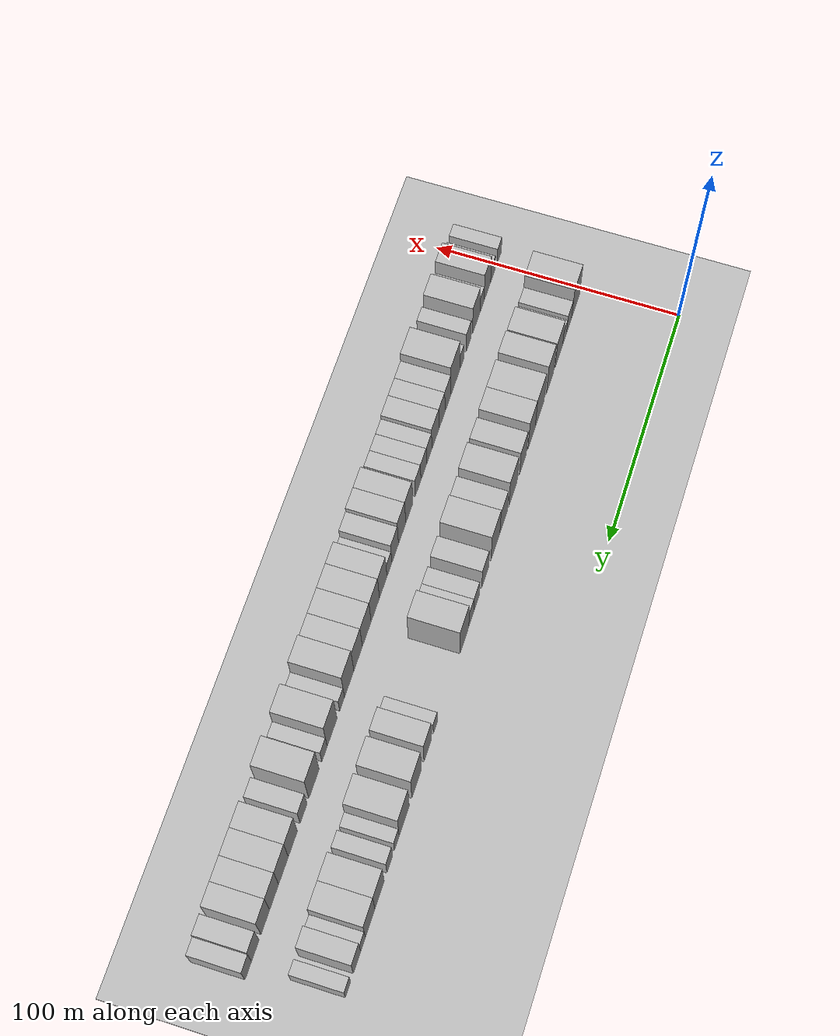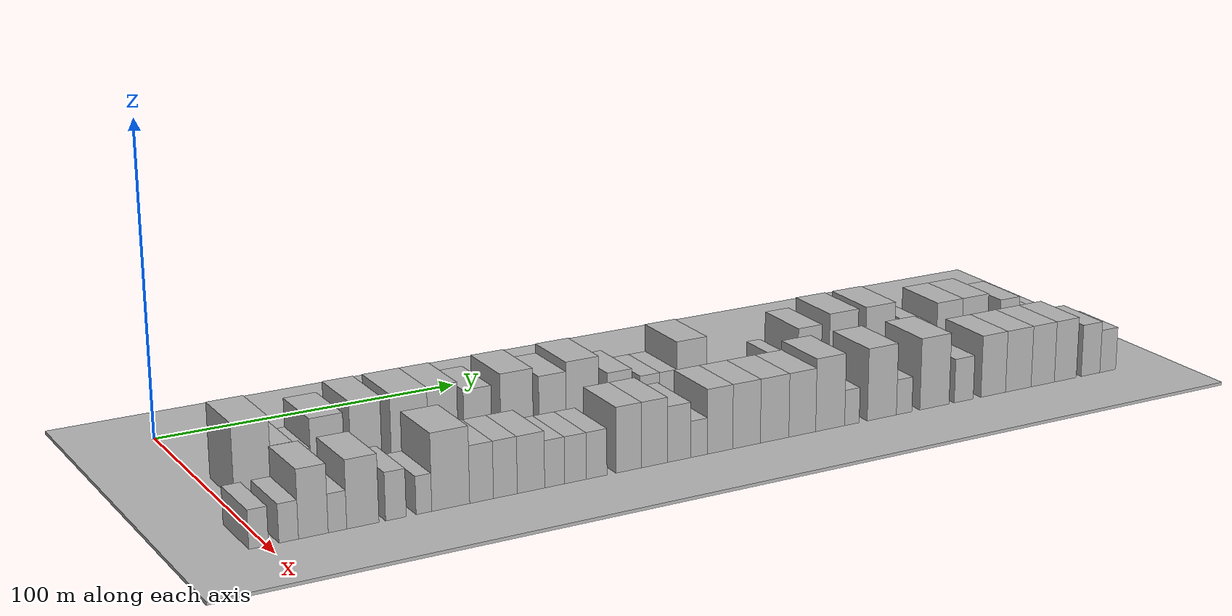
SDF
<sdf version="1.6">
 <world name="default">
  <include><name>ground_plane_1</name><uri>model://HANNAS_ground_plane</uri></include>
  <include>
   <name>ground_plane_2</name>
   <uri>model://HANNAS_ground_plane</uri>
   <pose>100 0 0  0 0 0</pose>
  </include>
  <model name="building_33">
   <static>1</static>
   <pose>50.0000 8.9000 0 0.000000 0.000000 0.000000</pose>
   <link name="link">
    <pose>0 0 12.00 0 0 0</pose>
    <collision name="collision"><geometry><box><size>20.0000 11.3878 24.0000</size></box></geometry></collision>
    <visual name="visual">
     <cast_shadows>0</cast_shadows>
     <geometry><box><size>20.0000 11.3878 24.0000</size></box></geometry>
     <material>
      <script>
       <uri>model://HANNAS_wall/materials/scripts</uri>
       <uri>model://HANNAS_wall/materials/textures</uri>
       <name>vrc/HANNAS_wall</name>
      </script>
     </material>
    </visual>
   </link>
  </model>
  <model name="building_34">
   <static>1</static>
   <pose>50.0000 18.0615 0 0.000000 0.000000 0.000000</pose>
   <link name="link">
    <pose>0 0 7.50 0 0 0</pose>
    <collision name="collision"><geometry><box><size>20.0000 6.9351 15.0000</size></box></geometry></collision>
    <visual name="visual">
     <cast_shadows>0</cast_shadows>
     <geometry><box><size>20.0000 6.9351 15.0000</size></box></geometry>
     <material>
      <script>
       <uri>model://HANNAS_wall/materials/scripts</uri>
       <uri>model://HANNAS_wall/materials/textures</uri>
       <name>vrc/HANNAS_wall</name>
      </script>
     </material>
    </visual>
   </link>
  </model>
  <model name="building_35">
   <static>1</static>
   <pose>50.0000 24.1710 0 0.000000 0.000000 0.000000</pose>
   <link name="link">
    <pose>0 0 6.00 0 0 0</pose>
    <collision name="collision"><geometry><box><size>20.0000 5.2841 12.0000</size></box></geometry></collision>
    <visual name="visual">
     <cast_shadows>0</cast_shadows>
     <geometry><box><size>20.0000 5.2841 12.0000</size></box></geometry>
     <material>
      <script>
       <uri>model://HANNAS_wall/materials/scripts</uri>
       <uri>model://HANNAS_wall/materials/textures</uri>
       <name>vrc/HANNAS_wall</name>
      </script>
     </material>
    </visual>
   </link>
  </model>
  <model name="building_36">
   <static>1</static>
   <pose>50.0000 32.0072 0 0.000000 0.000000 0.000000</pose>
   <link name="link">
    <pose>0 0 10.50 0 0 0</pose>
    <collision name="collision"><geometry><box><size>20.0000 10.3882 21.0000</size></box></geometry></collision>
    <visual name="visual">
     <cast_shadows>0</cast_shadows>
     <geometry><box><size>20.0000 10.3882 21.0000</size></box></geometry>
     <material>
      <script>
       <uri>model://HANNAS_wall/materials/scripts</uri>
       <uri>model://HANNAS_wall/materials/textures</uri>
       <name>vrc/HANNAS_wall</name>
      </script>
     </material>
    </visual>
   </link>
  </model>
  <model name="building_37">
   <static>1</static>
   <pose>50.0000 44.0992 0 0.000000 0.000000 0.000000</pose>
   <link name="link">
    <pose>0 0 12.00 0 0 0</pose>
    <collision name="collision"><geometry><box><size>20.0000 9.7959 24.0000</size></box></geometry></collision>
    <visual name="visual">
     <cast_shadows>0</cast_shadows>
     <geometry><box><size>20.0000 9.7959 24.0000</size></box></geometry>
     <material>
      <script>
       <uri>model://HANNAS_wall/materials/scripts</uri>
       <uri>model://HANNAS_wall/materials/textures</uri>
       <name>vrc/HANNAS_wall</name>
      </script>
     </material>
    </visual>
   </link>
  </model>
  <model name="building_38">
   <static>1</static>
   <pose>50.0000 57.9463 0 0.000000 0.000000 0.000000</pose>
   <link name="link">
    <pose>0 0 12.00 0 0 0</pose>
    <collision name="collision"><geometry><box><size>20.0000 11.8983 24.0000</size></box></geometry></collision>
    <visual name="visual">
     <cast_shadows>0</cast_shadows>
     <geometry><box><size>20.0000 11.8983 24.0000</size></box></geometry>
     <material>
      <script>
       <uri>model://HANNAS_wall/materials/scripts</uri>
       <uri>model://HANNAS_wall/materials/textures</uri>
       <name>vrc/HANNAS_wall</name>
      </script>
     </material>
    </visual>
   </link>
  </model>
  <model name="building_39">
   <static>1</static>
   <pose>50.0000 68.7560 0 0.000000 0.000000 0.000000</pose>
   <link name="link">
    <pose>0 0 12.00 0 0 0</pose>
    <collision name="collision"><geometry><box><size>20.0000 9.7211 24.0000</size></box></geometry></collision>
    <visual name="visual">
     <cast_shadows>0</cast_shadows>
     <geometry><box><size>20.0000 9.7211 24.0000</size></box></geometry>
     <material>
      <script>
       <uri>model://HANNAS_wall/materials/scripts</uri>
       <uri>model://HANNAS_wall/materials/textures</uri>
       <name>vrc/HANNAS_wall</name>
      </script>
     </material>
    </visual>
   </link>
  </model>
  <model name="building_40">
   <static>1</static>
   <pose>50.0000 80.1845 0 0.000000 0.000000 0.000000</pose>
   <link name="link">
    <pose>0 0 10.50 0 0 0</pose>
    <collision name="collision"><geometry><box><size>20.0000 9.1358 21.0000</size></box></geometry></collision>
    <visual name="visual">
     <cast_shadows>0</cast_shadows>
     <geometry><box><size>20.0000 9.1358 21.0000</size></box></geometry>
     <material>
      <script>
       <uri>model://HANNAS_wall/materials/scripts</uri>
       <uri>model://HANNAS_wall/materials/textures</uri>
       <name>vrc/HANNAS_wall</name>
      </script>
     </material>
    </visual>
   </link>
  </model>
  <model name="building_41">
   <static>1</static>
   <pose>50.0000 93.1958 0 0.000000 0.000000 0.000000</pose>
   <link name="link">
    <pose>0 0 12.00 0 0 0</pose>
    <collision name="collision"><geometry><box><size>20.0000 10.8868 24.0000</size></box></geometry></collision>
    <visual name="visual">
     <cast_shadows>0</cast_shadows>
     <geometry><box><size>20.0000 10.8868 24.0000</size></box></geometry>
     <material>
      <script>
       <uri>model://HANNAS_wall/materials/scripts</uri>
       <uri>model://HANNAS_wall/materials/textures</uri>
       <name>vrc/HANNAS_wall</name>
      </script>
     </material>
    </visual>
   </link>
  </model>
  <model name="building_42">
   <static>1</static>
   <pose>50.0000 105.2544 0 0.000000 0.000000 0.000000</pose>
   <link name="link">
    <pose>0 0 10.50 0 0 0</pose>
    <collision name="collision"><geometry><box><size>20.0000 9.2304 21.0000</size></box></geometry></collision>
    <visual name="visual">
     <cast_shadows>0</cast_shadows>
     <geometry><box><size>20.0000 9.2304 21.0000</size></box></geometry>
     <material>
      <script>
       <uri>model://HANNAS_wall/materials/scripts</uri>
       <uri>model://HANNAS_wall/materials/textures</uri>
       <name>vrc/HANNAS_wall</name>
      </script>
     </material>
    </visual>
   </link>
  </model>
  <model name="building_43">
   <static>1</static>
   <pose>50.0000 115.5424 0 0.000000 0.000000 0.000000</pose>
   <link name="link">
    <pose>0 0 12.00 0 0 0</pose>
    <collision name="collision"><geometry><box><size>20.0000 11.3457 24.0000</size></box></geometry></collision>
    <visual name="visual">
     <cast_shadows>0</cast_shadows>
     <geometry><box><size>20.0000 11.3457 24.0000</size></box></geometry>
     <material>
      <script>
       <uri>model://HANNAS_wall/materials/scripts</uri>
       <uri>model://HANNAS_wall/materials/textures</uri>
       <name>vrc/HANNAS_wall</name>
      </script>
     </material>
    </visual>
   </link>
  </model>
  <model name="building_44">
   <static>1</static>
   <pose>50.0000 128.4748 0 0.000000 0.000000 0.000000</pose>
   <link name="link">
    <pose>0 0 9.00 0 0 0</pose>
    <collision name="collision"><geometry><box><size>20.0000 8.5190 18.0000</size></box></geometry></collision>
    <visual name="visual">
     <cast_shadows>0</cast_shadows>
     <geometry><box><size>20.0000 8.5190 18.0000</size></box></geometry>
     <material>
      <script>
       <uri>model://HANNAS_wall/materials/scripts</uri>
       <uri>model://HANNAS_wall/materials/textures</uri>
       <name>vrc/HANNAS_wall</name>
      </script>
     </material>
    </visual>
   </link>
  </model>
  <model name="building_45">
   <static>1</static>
   <pose>50.0000 139.2101 0 0.000000 0.000000 0.000000</pose>
   <link name="link">
    <pose>0 0 7.50 0 0 0</pose>
    <collision name="collision"><geometry><box><size>20.0000 6.9514 15.0000</size></box></geometry></collision>
    <visual name="visual">
     <cast_shadows>0</cast_shadows>
     <geometry><box><size>20.0000 6.9514 15.0000</size></box></geometry>
     <material>
      <script>
       <uri>model://HANNAS_wall/materials/scripts</uri>
       <uri>model://HANNAS_wall/materials/textures</uri>
       <name>vrc/HANNAS_wall</name>
      </script>
     </material>
    </visual>
   </link>
  </model>
  <model name="building_46">
   <static>1</static>
   <pose>50.0000 145.6964 0 0.000000 0.000000 0.000000</pose>
   <link name="link">
    <pose>0 0 7.50 0 0 0</pose>
    <collision name="collision"><geometry><box><size>20.0000 6.0213 15.0000</size></box></geometry></collision>
    <visual name="visual">
     <cast_shadows>0</cast_shadows>
     <geometry><box><size>20.0000 6.0213 15.0000</size></box></geometry>
     <material>
      <script>
       <uri>model://HANNAS_wall/materials/scripts</uri>
       <uri>model://HANNAS_wall/materials/textures</uri>
       <name>vrc/HANNAS_wall</name>
      </script>
     </material>
    </visual>
   </link>
  </model>
  <model name="building_47">
   <static>1</static>
   <pose>50.0000 154.1085 0 0.000000 0.000000 0.000000</pose>
   <link name="link">
    <pose>0 0 12.00 0 0 0</pose>
    <collision name="collision"><geometry><box><size>20.0000 10.8028 24.0000</size></box></geometry></collision>
    <visual name="visual">
     <cast_shadows>0</cast_shadows>
     <geometry><box><size>20.0000 10.8028 24.0000</size></box></geometry>
     <material>
      <script>
       <uri>model://HANNAS_wall/materials/scripts</uri>
       <uri>model://HANNAS_wall/materials/textures</uri>
       <name>vrc/HANNAS_wall</name>
      </script>
     </material>
    </visual>
   </link>
  </model>
  <model name="building_48">
   <static>1</static>
   <pose>50.0000 189.0188 0 0.000000 0.000000 0.000000</pose>
   <link name="link">
    <pose>0 0 6.00 0 0 0</pose>
    <collision name="collision"><geometry><box><size>20.0000 5.0059 12.0000</size></box></geometry></collision>
    <visual name="visual">
     <cast_shadows>0</cast_shadows>
     <geometry><box><size>20.0000 5.0059 12.0000</size></box></geometry>
     <material>
      <script>
       <uri>model://HANNAS_wall/materials/scripts</uri>
       <uri>model://HANNAS_wall/materials/textures</uri>
       <name>vrc/HANNAS_wall</name>
      </script>
     </material>
    </visual>
   </link>
  </model>
  <model name="building_49">
   <static>1</static>
   <pose>50.0000 197.9715 0 0.000000 0.000000 0.000000</pose>
   <link name="link">
    <pose>0 0 10.50 0 0 0</pose>
    <collision name="collision"><geometry><box><size>20.0000 8.8994 21.0000</size></box></geometry></collision>
    <visual name="visual">
     <cast_shadows>0</cast_shadows>
     <geometry><box><size>20.0000 8.8994 21.0000</size></box></geometry>
     <material>
      <script>
       <uri>model://HANNAS_wall/materials/scripts</uri>
       <uri>model://HANNAS_wall/materials/textures</uri>
       <name>vrc/HANNAS_wall</name>
      </script>
     </material>
    </visual>
   </link>
  </model>
  <model name="building_50">
   <static>1</static>
   <pose>50.0000 210.9575 0 0.000000 0.000000 0.000000</pose>
   <link name="link">
    <pose>0 0 12.00 0 0 0</pose>
    <collision name="collision"><geometry><box><size>20.0000 11.0726 24.0000</size></box></geometry></collision>
    <visual name="visual">
     <cast_shadows>0</cast_shadows>
     <geometry><box><size>20.0000 11.0726 24.0000</size></box></geometry>
     <material>
      <script>
       <uri>model://HANNAS_wall/materials/scripts</uri>
       <uri>model://HANNAS_wall/materials/textures</uri>
       <name>vrc/HANNAS_wall</name>
      </script>
     </material>
    </visual>
   </link>
  </model>
  <model name="building_51">
   <static>1</static>
   <pose>50.0000 225.2225 0 0.000000 0.000000 0.000000</pose>
   <link name="link">
    <pose>0 0 12.00 0 0 0</pose>
    <collision name="collision"><geometry><box><size>20.0000 11.4574 24.0000</size></box></geometry></collision>
    <visual name="visual">
     <cast_shadows>0</cast_shadows>
     <geometry><box><size>20.0000 11.4574 24.0000</size></box></geometry>
     <material>
      <script>
       <uri>model://HANNAS_wall/materials/scripts</uri>
       <uri>model://HANNAS_wall/materials/textures</uri>
       <name>vrc/HANNAS_wall</name>
      </script>
     </material>
    </visual>
   </link>
  </model>
  <model name="building_52">
   <static>1</static>
   <pose>50.0000 233.6686 0 0.000000 0.000000 0.000000</pose>
   <link name="link">
    <pose>0 0 6.00 0 0 0</pose>
    <collision name="collision"><geometry><box><size>20.0000 5.4349 12.0000</size></box></geometry></collision>
    <visual name="visual">
     <cast_shadows>0</cast_shadows>
     <geometry><box><size>20.0000 5.4349 12.0000</size></box></geometry>
     <material>
      <script>
       <uri>model://HANNAS_wall/materials/scripts</uri>
       <uri>model://HANNAS_wall/materials/textures</uri>
       <name>vrc/HANNAS_wall</name>
      </script>
     </material>
    </visual>
   </link>
  </model>
  <model name="building_53">
   <static>1</static>
   <pose>50.0000 241.5893 0 0.000000 0.000000 0.000000</pose>
   <link name="link">
    <pose>0 0 7.50 0 0 0</pose>
    <collision name="collision"><geometry><box><size>20.0000 6.4063 15.0000</size></box></geometry></collision>
    <visual name="visual">
     <cast_shadows>0</cast_shadows>
     <geometry><box><size>20.0000 6.4063 15.0000</size></box></geometry>
     <material>
      <script>
       <uri>model://HANNAS_wall/materials/scripts</uri>
       <uri>model://HANNAS_wall/materials/textures</uri>
       <name>vrc/HANNAS_wall</name>
      </script>
     </material>
    </visual>
   </link>
  </model>
  <model name="building_54">
   <static>1</static>
   <pose>50.0000 252.9674 0 0.000000 0.000000 0.000000</pose>
   <link name="link">
    <pose>0 0 10.50 0 0 0</pose>
    <collision name="collision"><geometry><box><size>20.0000 10.3499 21.0000</size></box></geometry></collision>
    <visual name="visual">
     <cast_shadows>0</cast_shadows>
     <geometry><box><size>20.0000 10.3499 21.0000</size></box></geometry>
     <material>
      <script>
       <uri>model://HANNAS_wall/materials/scripts</uri>
       <uri>model://HANNAS_wall/materials/textures</uri>
       <name>vrc/HANNAS_wall</name>
      </script>
     </material>
    </visual>
   </link>
  </model>
  <model name="building_55">
   <static>1</static>
   <pose>50.0000 263.3707 0 0.000000 0.000000 0.000000</pose>
   <link name="link">
    <pose>0 0 10.50 0 0 0</pose>
    <collision name="collision"><geometry><box><size>20.0000 10.4568 21.0000</size></box></geometry></collision>
    <visual name="visual">
     <cast_shadows>0</cast_shadows>
     <geometry><box><size>20.0000 10.4568 21.0000</size></box></geometry>
     <material>
      <script>
       <uri>model://HANNAS_wall/materials/scripts</uri>
       <uri>model://HANNAS_wall/materials/textures</uri>
       <name>vrc/HANNAS_wall</name>
      </script>
     </material>
    </visual>
   </link>
  </model>
  <model name="building_56">
   <static>1</static>
   <pose>50.0000 271.1727 0 0.000000 0.000000 0.000000</pose>
   <link name="link">
    <pose>0 0 6.00 0 0 0</pose>
    <collision name="collision"><geometry><box><size>20.0000 5.1471 12.0000</size></box></geometry></collision>
    <visual name="visual">
     <cast_shadows>0</cast_shadows>
     <geometry><box><size>20.0000 5.1471 12.0000</size></box></geometry>
     <material>
      <script>
       <uri>model://HANNAS_wall/materials/scripts</uri>
       <uri>model://HANNAS_wall/materials/textures</uri>
       <name>vrc/HANNAS_wall</name>
      </script>
     </material>
    </visual>
   </link>
  </model>
  <model name="building_57">
   <static>1</static>
   <pose>50.0000 277.6704 0 0.000000 0.000000 0.000000</pose>
   <link name="link">
    <pose>0 0 9.00 0 0 0</pose>
    <collision name="collision"><geometry><box><size>20.0000 7.8482 18.0000</size></box></geometry></collision>
    <visual name="visual">
     <cast_shadows>0</cast_shadows>
     <geometry><box><size>20.0000 7.8482 18.0000</size></box></geometry>
     <material>
      <script>
       <uri>model://HANNAS_wall/materials/scripts</uri>
       <uri>model://HANNAS_wall/materials/textures</uri>
       <name>vrc/HANNAS_wall</name>
      </script>
     </material>
    </visual>
   </link>
  </model>
  <model name="building_58">
   <static>1</static>
   <pose>50.0000 287.4004 0 0.000000 0.000000 0.000000</pose>
   <link name="link">
    <pose>0 0 6.00 0 0 0</pose>
    <collision name="collision"><geometry><box><size>20.0000 5.6119 12.0000</size></box></geometry></collision>
    <visual name="visual">
     <cast_shadows>0</cast_shadows>
     <geometry><box><size>20.0000 5.6119 12.0000</size></box></geometry>
     <material>
      <script>
       <uri>model://HANNAS_wall/materials/scripts</uri>
       <uri>model://HANNAS_wall/materials/textures</uri>
       <name>vrc/HANNAS_wall</name>
      </script>
     </material>
    </visual>
   </link>
  </model>
  <model name="building_87">
   <static>1</static>
   <pose>85.0000 -2.7954 0 0.000000 0.000000 0.000000</pose>
   <link name="link">
    <pose>0 0 6.00 0 0 0</pose>
    <collision name="collision"><geometry><box><size>20.0000 5.6677 12.0000</size></box></geometry></collision>
    <visual name="visual">
     <cast_shadows>0</cast_shadows>
     <geometry><box><size>20.0000 5.6677 12.0000</size></box></geometry>
     <material>
      <script>
       <uri>model://HANNAS_wall/materials/scripts</uri>
       <uri>model://HANNAS_wall/materials/textures</uri>
       <name>vrc/HANNAS_wall</name>
      </script>
     </material>
    </visual>
   </link>
  </model>
  <model name="building_88">
   <static>1</static>
   <pose>85.0000 5.8974 0 0.000000 0.000000 0.000000</pose>
   <link name="link">
    <pose>0 0 6.00 0 0 0</pose>
    <collision name="collision"><geometry><box><size>20.0000 5.7178 12.0000</size></box></geometry></collision>
    <visual name="visual">
     <cast_shadows>0</cast_shadows>
     <geometry><box><size>20.0000 5.7178 12.0000</size></box></geometry>
     <material>
      <script>
       <uri>model://HANNAS_wall/materials/scripts</uri>
       <uri>model://HANNAS_wall/materials/textures</uri>
       <name>vrc/HANNAS_wall</name>
      </script>
     </material>
    </visual>
   </link>
  </model>
  <model name="building_89">
   <static>1</static>
   <pose>85.0000 13.1301 0 0.000000 0.000000 0.000000</pose>
   <link name="link">
    <pose>0 0 10.50 0 0 0</pose>
    <collision name="collision"><geometry><box><size>20.0000 8.7476 21.0000</size></box></geometry></collision>
    <visual name="visual">
     <cast_shadows>0</cast_shadows>
     <geometry><box><size>20.0000 8.7476 21.0000</size></box></geometry>
     <material>
      <script>
       <uri>model://HANNAS_wall/materials/scripts</uri>
       <uri>model://HANNAS_wall/materials/textures</uri>
       <name>vrc/HANNAS_wall</name>
      </script>
     </material>
    </visual>
   </link>
  </model>
  <model name="building_90">
   <static>1</static>
   <pose>85.0000 20.2604 0 0.000000 0.000000 0.000000</pose>
   <link name="link">
    <pose>0 0 6.00 0 0 0</pose>
    <collision name="collision"><geometry><box><size>20.0000 5.5129 12.0000</size></box></geometry></collision>
    <visual name="visual">
     <cast_shadows>0</cast_shadows>
     <geometry><box><size>20.0000 5.5129 12.0000</size></box></geometry>
     <material>
      <script>
       <uri>model://HANNAS_wall/materials/scripts</uri>
       <uri>model://HANNAS_wall/materials/textures</uri>
       <name>vrc/HANNAS_wall</name>
      </script>
     </material>
    </visual>
   </link>
  </model>
  <model name="building_91">
   <static>1</static>
   <pose>85.0000 27.8460 0 0.000000 0.000000 0.000000</pose>
   <link name="link">
    <pose>0 0 10.50 0 0 0</pose>
    <collision name="collision"><geometry><box><size>20.0000 9.6585 21.0000</size></box></geometry></collision>
    <visual name="visual">
     <cast_shadows>0</cast_shadows>
     <geometry><box><size>20.0000 9.6585 21.0000</size></box></geometry>
     <material>
      <script>
       <uri>model://HANNAS_wall/materials/scripts</uri>
       <uri>model://HANNAS_wall/materials/textures</uri>
       <name>vrc/HANNAS_wall</name>
      </script>
     </material>
    </visual>
   </link>
  </model>
  <model name="building_92">
   <static>1</static>
   <pose>85.0000 37.8238 0 0.000000 0.000000 0.000000</pose>
   <link name="link">
    <pose>0 0 7.50 0 0 0</pose>
    <collision name="collision"><geometry><box><size>20.0000 6.2969 15.0000</size></box></geometry></collision>
    <visual name="visual">
     <cast_shadows>0</cast_shadows>
     <geometry><box><size>20.0000 6.2969 15.0000</size></box></geometry>
     <material>
      <script>
       <uri>model://HANNAS_wall/materials/scripts</uri>
       <uri>model://HANNAS_wall/materials/textures</uri>
       <name>vrc/HANNAS_wall</name>
      </script>
     </material>
    </visual>
   </link>
  </model>
  <model name="building_93">
   <static>1</static>
   <pose>85.0000 46.3914 0 0.000000 0.000000 0.000000</pose>
   <link name="link">
    <pose>0 0 6.00 0 0 0</pose>
    <collision name="collision"><geometry><box><size>20.0000 4.8383 12.0000</size></box></geometry></collision>
    <visual name="visual">
     <cast_shadows>0</cast_shadows>
     <geometry><box><size>20.0000 4.8383 12.0000</size></box></geometry>
     <material>
      <script>
       <uri>model://HANNAS_wall/materials/scripts</uri>
       <uri>model://HANNAS_wall/materials/textures</uri>
       <name>vrc/HANNAS_wall</name>
      </script>
     </material>
    </visual>
   </link>
  </model>
  <model name="building_94">
   <static>1</static>
   <pose>85.0000 54.7093 0 0.000000 0.000000 0.000000</pose>
   <link name="link">
    <pose>0 0 12.00 0 0 0</pose>
    <collision name="collision"><geometry><box><size>20.0000 11.7976 24.0000</size></box></geometry></collision>
    <visual name="visual">
     <cast_shadows>0</cast_shadows>
     <geometry><box><size>20.0000 11.7976 24.0000</size></box></geometry>
     <material>
      <script>
       <uri>model://HANNAS_wall/materials/scripts</uri>
       <uri>model://HANNAS_wall/materials/textures</uri>
       <name>vrc/HANNAS_wall</name>
      </script>
     </material>
    </visual>
   </link>
  </model>
  <model name="building_95">
   <static>1</static>
   <pose>85.0000 64.3625 0 0.000000 0.000000 0.000000</pose>
   <link name="link">
    <pose>0 0 9.00 0 0 0</pose>
    <collision name="collision"><geometry><box><size>20.0000 7.5087 18.0000</size></box></geometry></collision>
    <visual name="visual">
     <cast_shadows>0</cast_shadows>
     <geometry><box><size>20.0000 7.5087 18.0000</size></box></geometry>
     <material>
      <script>
       <uri>model://HANNAS_wall/materials/scripts</uri>
       <uri>model://HANNAS_wall/materials/textures</uri>
       <name>vrc/HANNAS_wall</name>
      </script>
     </material>
    </visual>
   </link>
  </model>
  <model name="building_96">
   <static>1</static>
   <pose>85.0000 71.9154 0 0.000000 0.000000 0.000000</pose>
   <link name="link">
    <pose>0 0 9.00 0 0 0</pose>
    <collision name="collision"><geometry><box><size>20.0000 7.5970 18.0000</size></box></geometry></collision>
    <visual name="visual">
     <cast_shadows>0</cast_shadows>
     <geometry><box><size>20.0000 7.5970 18.0000</size></box></geometry>
     <material>
      <script>
       <uri>model://HANNAS_wall/materials/scripts</uri>
       <uri>model://HANNAS_wall/materials/textures</uri>
       <name>vrc/HANNAS_wall</name>
      </script>
     </material>
    </visual>
   </link>
  </model>
  <model name="building_97">
   <static>1</static>
   <pose>85.0000 80.1117 0 0.000000 0.000000 0.000000</pose>
   <link name="link">
    <pose>0 0 9.00 0 0 0</pose>
    <collision name="collision"><geometry><box><size>20.0000 8.7957 18.0000</size></box></geometry></collision>
    <visual name="visual">
     <cast_shadows>0</cast_shadows>
     <geometry><box><size>20.0000 8.7957 18.0000</size></box></geometry>
     <material>
      <script>
       <uri>model://HANNAS_wall/materials/scripts</uri>
       <uri>model://HANNAS_wall/materials/textures</uri>
       <name>vrc/HANNAS_wall</name>
      </script>
     </material>
    </visual>
   </link>
  </model>
  <model name="building_98">
   <static>1</static>
   <pose>85.0000 87.7435 0 0.000000 0.000000 0.000000</pose>
   <link name="link">
    <pose>0 0 7.50 0 0 0</pose>
    <collision name="collision"><geometry><box><size>20.0000 6.4680 15.0000</size></box></geometry></collision>
    <visual name="visual">
     <cast_shadows>0</cast_shadows>
     <geometry><box><size>20.0000 6.4680 15.0000</size></box></geometry>
     <material>
      <script>
       <uri>model://HANNAS_wall/materials/scripts</uri>
       <uri>model://HANNAS_wall/materials/textures</uri>
       <name>vrc/HANNAS_wall</name>
      </script>
     </material>
    </visual>
   </link>
  </model>
  <model name="building_99">
   <static>1</static>
   <pose>85.0000 94.5306 0 0.000000 0.000000 0.000000</pose>
   <link name="link">
    <pose>0 0 7.50 0 0 0</pose>
    <collision name="collision"><geometry><box><size>20.0000 7.1062 15.0000</size></box></geometry></collision>
    <visual name="visual">
     <cast_shadows>0</cast_shadows>
     <geometry><box><size>20.0000 7.1062 15.0000</size></box></geometry>
     <material>
      <script>
       <uri>model://HANNAS_wall/materials/scripts</uri>
       <uri>model://HANNAS_wall/materials/textures</uri>
       <name>vrc/HANNAS_wall</name>
      </script>
     </material>
    </visual>
   </link>
  </model>
  <model name="building_100">
   <static>1</static>
   <pose>85.0000 101.5098 0 0.000000 0.000000 0.000000</pose>
   <link name="link">
    <pose>0 0 7.50 0 0 0</pose>
    <collision name="collision"><geometry><box><size>20.0000 6.8522 15.0000</size></box></geometry></collision>
    <visual name="visual">
     <cast_shadows>0</cast_shadows>
     <geometry><box><size>20.0000 6.8522 15.0000</size></box></geometry>
     <material>
      <script>
       <uri>model://HANNAS_wall/materials/scripts</uri>
       <uri>model://HANNAS_wall/materials/textures</uri>
       <name>vrc/HANNAS_wall</name>
      </script>
     </material>
    </visual>
   </link>
  </model>
  <model name="building_101">
   <static>1</static>
   <pose>85.0000 112.2452 0 0.000000 0.000000 0.000000</pose>
   <link name="link">
    <pose>0 0 10.50 0 0 0</pose>
    <collision name="collision"><geometry><box><size>20.0000 8.6186 21.0000</size></box></geometry></collision>
    <visual name="visual">
     <cast_shadows>0</cast_shadows>
     <geometry><box><size>20.0000 8.6186 21.0000</size></box></geometry>
     <material>
      <script>
       <uri>model://HANNAS_wall/materials/scripts</uri>
       <uri>model://HANNAS_wall/materials/textures</uri>
       <name>vrc/HANNAS_wall</name>
      </script>
     </material>
    </visual>
   </link>
  </model>
  <model name="building_102">
   <static>1</static>
   <pose>85.0000 120.9372 0 0.000000 0.000000 0.000000</pose>
   <link name="link">
    <pose>0 0 10.50 0 0 0</pose>
    <collision name="collision"><geometry><box><size>20.0000 8.7654 21.0000</size></box></geometry></collision>
    <visual name="visual">
     <cast_shadows>0</cast_shadows>
     <geometry><box><size>20.0000 8.7654 21.0000</size></box></geometry>
     <material>
      <script>
       <uri>model://HANNAS_wall/materials/scripts</uri>
       <uri>model://HANNAS_wall/materials/textures</uri>
       <name>vrc/HANNAS_wall</name>
      </script>
     </material>
    </visual>
   </link>
  </model>
  <model name="building_103">
   <static>1</static>
   <pose>85.0000 129.3036 0 0.000000 0.000000 0.000000</pose>
   <link name="link">
    <pose>0 0 9.00 0 0 0</pose>
    <collision name="collision"><geometry><box><size>20.0000 7.9675 18.0000</size></box></geometry></collision>
    <visual name="visual">
     <cast_shadows>0</cast_shadows>
     <geometry><box><size>20.0000 7.9675 18.0000</size></box></geometry>
     <material>
      <script>
       <uri>model://HANNAS_wall/materials/scripts</uri>
       <uri>model://HANNAS_wall/materials/textures</uri>
       <name>vrc/HANNAS_wall</name>
      </script>
     </material>
    </visual>
   </link>
  </model>
  <model name="building_104">
   <static>1</static>
   <pose>85.0000 136.1752 0 0.000000 0.000000 0.000000</pose>
   <link name="link">
    <pose>0 0 6.00 0 0 0</pose>
    <collision name="collision"><geometry><box><size>20.0000 5.7757 12.0000</size></box></geometry></collision>
    <visual name="visual">
     <cast_shadows>0</cast_shadows>
     <geometry><box><size>20.0000 5.7757 12.0000</size></box></geometry>
     <material>
      <script>
       <uri>model://HANNAS_wall/materials/scripts</uri>
       <uri>model://HANNAS_wall/materials/textures</uri>
       <name>vrc/HANNAS_wall</name>
      </script>
     </material>
    </visual>
   </link>
  </model>
  <model name="building_105">
   <static>1</static>
   <pose>85.0000 143.4903 0 0.000000 0.000000 0.000000</pose>
   <link name="link">
    <pose>0 0 10.50 0 0 0</pose>
    <collision name="collision"><geometry><box><size>20.0000 8.8543 21.0000</size></box></geometry></collision>
    <visual name="visual">
     <cast_shadows>0</cast_shadows>
     <geometry><box><size>20.0000 8.8543 21.0000</size></box></geometry>
     <material>
      <script>
       <uri>model://HANNAS_wall/materials/scripts</uri>
       <uri>model://HANNAS_wall/materials/textures</uri>
       <name>vrc/HANNAS_wall</name>
      </script>
     </material>
    </visual>
   </link>
  </model>
  <model name="building_106">
   <static>1</static>
   <pose>85.0000 152.8066 0 0.000000 0.000000 0.000000</pose>
   <link name="link">
    <pose>0 0 10.50 0 0 0</pose>
    <collision name="collision"><geometry><box><size>20.0000 9.7783 21.0000</size></box></geometry></collision>
    <visual name="visual">
     <cast_shadows>0</cast_shadows>
     <geometry><box><size>20.0000 9.7783 21.0000</size></box></geometry>
     <material>
      <script>
       <uri>model://HANNAS_wall/materials/scripts</uri>
       <uri>model://HANNAS_wall/materials/textures</uri>
       <name>vrc/HANNAS_wall</name>
      </script>
     </material>
    </visual>
   </link>
  </model>
  <model name="building_107">
   <static>1</static>
   <pose>85.0000 162.7970 0 0.000000 0.000000 0.000000</pose>
   <link name="link">
    <pose>0 0 10.50 0 0 0</pose>
    <collision name="collision"><geometry><box><size>20.0000 10.2024 21.0000</size></box></geometry></collision>
    <visual name="visual">
     <cast_shadows>0</cast_shadows>
     <geometry><box><size>20.0000 10.2024 21.0000</size></box></geometry>
     <material>
      <script>
       <uri>model://HANNAS_wall/materials/scripts</uri>
       <uri>model://HANNAS_wall/materials/textures</uri>
       <name>vrc/HANNAS_wall</name>
      </script>
     </material>
    </visual>
   </link>
  </model>
  <model name="building_108">
   <static>1</static>
   <pose>85.0000 172.7538 0 0.000000 0.000000 0.000000</pose>
   <link name="link">
    <pose>0 0 10.50 0 0 0</pose>
    <collision name="collision"><geometry><box><size>20.0000 9.7113 21.0000</size></box></geometry></collision>
    <visual name="visual">
     <cast_shadows>0</cast_shadows>
     <geometry><box><size>20.0000 9.7113 21.0000</size></box></geometry>
     <material>
      <script>
       <uri>model://HANNAS_wall/materials/scripts</uri>
       <uri>model://HANNAS_wall/materials/textures</uri>
       <name>vrc/HANNAS_wall</name>
      </script>
     </material>
    </visual>
   </link>
  </model>
  <model name="building_109">
   <static>1</static>
   <pose>85.0000 182.9253 0 0.000000 0.000000 0.000000</pose>
   <link name="link">
    <pose>0 0 12.00 0 0 0</pose>
    <collision name="collision"><geometry><box><size>20.0000 10.6316 24.0000</size></box></geometry></collision>
    <visual name="visual">
     <cast_shadows>0</cast_shadows>
     <geometry><box><size>20.0000 10.6316 24.0000</size></box></geometry>
     <material>
      <script>
       <uri>model://HANNAS_wall/materials/scripts</uri>
       <uri>model://HANNAS_wall/materials/textures</uri>
       <name>vrc/HANNAS_wall</name>
      </script>
     </material>
    </visual>
   </link>
  </model>
  <model name="building_110">
   <static>1</static>
   <pose>85.0000 190.9452 0 0.000000 0.000000 0.000000</pose>
   <link name="link">
    <pose>0 0 6.00 0 0 0</pose>
    <collision name="collision"><geometry><box><size>20.0000 5.4082 12.0000</size></box></geometry></collision>
    <visual name="visual">
     <cast_shadows>0</cast_shadows>
     <geometry><box><size>20.0000 5.4082 12.0000</size></box></geometry>
     <material>
      <script>
       <uri>model://HANNAS_wall/materials/scripts</uri>
       <uri>model://HANNAS_wall/materials/textures</uri>
       <name>vrc/HANNAS_wall</name>
      </script>
     </material>
    </visual>
   </link>
  </model>
  <model name="building_111">
   <static>1</static>
   <pose>85.0000 202.1188 0 0.000000 0.000000 0.000000</pose>
   <link name="link">
    <pose>0 0 12.00 0 0 0</pose>
    <collision name="collision"><geometry><box><size>20.0000 10.9391 24.0000</size></box></geometry></collision>
    <visual name="visual">
     <cast_shadows>0</cast_shadows>
     <geometry><box><size>20.0000 10.9391 24.0000</size></box></geometry>
     <material>
      <script>
       <uri>model://HANNAS_wall/materials/scripts</uri>
       <uri>model://HANNAS_wall/materials/textures</uri>
       <name>vrc/HANNAS_wall</name>
      </script>
     </material>
    </visual>
   </link>
  </model>
  <model name="building_112">
   <static>1</static>
   <pose>85.0000 210.5427 0 0.000000 0.000000 0.000000</pose>
   <link name="link">
    <pose>0 0 6.00 0 0 0</pose>
    <collision name="collision"><geometry><box><size>20.0000 5.9086 12.0000</size></box></geometry></collision>
    <visual name="visual">
     <cast_shadows>0</cast_shadows>
     <geometry><box><size>20.0000 5.9086 12.0000</size></box></geometry>
     <material>
      <script>
       <uri>model://HANNAS_wall/materials/scripts</uri>
       <uri>model://HANNAS_wall/materials/textures</uri>
       <name>vrc/HANNAS_wall</name>
      </script>
     </material>
    </visual>
   </link>
  </model>
  <model name="building_113">
   <static>1</static>
   <pose>85.0000 222.1323 0 0.000000 0.000000 0.000000</pose>
   <link name="link">
    <pose>0 0 12.00 0 0 0</pose>
    <collision name="collision"><geometry><box><size>20.0000 11.2706 24.0000</size></box></geometry></collision>
    <visual name="visual">
     <cast_shadows>0</cast_shadows>
     <geometry><box><size>20.0000 11.2706 24.0000</size></box></geometry>
     <material>
      <script>
       <uri>model://HANNAS_wall/materials/scripts</uri>
       <uri>model://HANNAS_wall/materials/textures</uri>
       <name>vrc/HANNAS_wall</name>
      </script>
     </material>
    </visual>
   </link>
  </model>
  <model name="building_114">
   <static>1</static>
   <pose>85.0000 233.4719 0 0.000000 0.000000 0.000000</pose>
   <link name="link">
    <pose>0 0 7.50 0 0 0</pose>
    <collision name="collision"><geometry><box><size>20.0000 7.4086 15.0000</size></box></geometry></collision>
    <visual name="visual">
     <cast_shadows>0</cast_shadows>
     <geometry><box><size>20.0000 7.4086 15.0000</size></box></geometry>
     <material>
      <script>
       <uri>model://HANNAS_wall/materials/scripts</uri>
       <uri>model://HANNAS_wall/materials/textures</uri>
       <name>vrc/HANNAS_wall</name>
      </script>
     </material>
    </visual>
   </link>
  </model>
  <model name="building_115">
   <static>1</static>
   <pose>85.0000 245.0456 0 0.000000 0.000000 0.000000</pose>
   <link name="link">
    <pose>0 0 10.50 0 0 0</pose>
    <collision name="collision"><geometry><box><size>20.0000 9.7389 21.0000</size></box></geometry></collision>
    <visual name="visual">
     <cast_shadows>0</cast_shadows>
     <geometry><box><size>20.0000 9.7389 21.0000</size></box></geometry>
     <material>
      <script>
       <uri>model://HANNAS_wall/materials/scripts</uri>
       <uri>model://HANNAS_wall/materials/textures</uri>
       <name>vrc/HANNAS_wall</name>
      </script>
     </material>
    </visual>
   </link>
  </model>
  <model name="building_116">
   <static>1</static>
   <pose>85.0000 255.0405 0 0.000000 0.000000 0.000000</pose>
   <link name="link">
    <pose>0 0 10.50 0 0 0</pose>
    <collision name="collision"><geometry><box><size>20.0000 10.2509 21.0000</size></box></geometry></collision>
    <visual name="visual">
     <cast_shadows>0</cast_shadows>
     <geometry><box><size>20.0000 10.2509 21.0000</size></box></geometry>
     <material>
      <script>
       <uri>model://HANNAS_wall/materials/scripts</uri>
       <uri>model://HANNAS_wall/materials/textures</uri>
       <name>vrc/HANNAS_wall</name>
      </script>
     </material>
    </visual>
   </link>
  </model>
  <model name="building_117">
   <static>1</static>
   <pose>85.0000 264.8726 0 0.000000 0.000000 0.000000</pose>
   <link name="link">
    <pose>0 0 10.50 0 0 0</pose>
    <collision name="collision"><geometry><box><size>20.0000 9.4132 21.0000</size></box></geometry></collision>
    <visual name="visual">
     <cast_shadows>0</cast_shadows>
     <geometry><box><size>20.0000 9.4132 21.0000</size></box></geometry>
     <material>
      <script>
       <uri>model://HANNAS_wall/materials/scripts</uri>
       <uri>model://HANNAS_wall/materials/textures</uri>
       <name>vrc/HANNAS_wall</name>
      </script>
     </material>
    </visual>
   </link>
  </model>
  <model name="building_118">
   <static>1</static>
   <pose>85.0000 274.0887 0 0.000000 0.000000 0.000000</pose>
   <link name="link">
    <pose>0 0 10.50 0 0 0</pose>
    <collision name="collision"><geometry><box><size>20.0000 9.0190 21.0000</size></box></geometry></collision>
    <visual name="visual">
     <cast_shadows>0</cast_shadows>
     <geometry><box><size>20.0000 9.0190 21.0000</size></box></geometry>
     <material>
      <script>
       <uri>model://HANNAS_wall/materials/scripts</uri>
       <uri>model://HANNAS_wall/materials/textures</uri>
       <name>vrc/HANNAS_wall</name>
      </script>
     </material>
    </visual>
   </link>
  </model>
  <model name="building_119">
   <static>1</static>
   <pose>85.0000 284.4554 0 0.000000 0.000000 0.000000</pose>
   <link name="link">
    <pose>0 0 9.00 0 0 0</pose>
    <collision name="collision"><geometry><box><size>20.0000 7.7144 18.0000</size></box></geometry></collision>
    <visual name="visual">
     <cast_shadows>0</cast_shadows>
     <geometry><box><size>20.0000 7.7144 18.0000</size></box></geometry>
     <material>
      <script>
       <uri>model://HANNAS_wall/materials/scripts</uri>
       <uri>model://HANNAS_wall/materials/textures</uri>
       <name>vrc/HANNAS_wall</name>
      </script>
     </material>
    </visual>
   </link>
  </model>
  <model name="building_120">
   <static>1</static>
   <pose>85.0000 291.6272 0 0.000000 0.000000 0.000000</pose>
   <link name="link">
    <pose>0 0 7.50 0 0 0</pose>
    <collision name="collision"><geometry><box><size>20.0000 6.6293 15.0000</size></box></geometry></collision>
    <visual name="visual">
     <cast_shadows>0</cast_shadows>
     <geometry><box><size>20.0000 6.6293 15.0000</size></box></geometry>
     <material>
      <script>
       <uri>model://HANNAS_wall/materials/scripts</uri>
       <uri>model://HANNAS_wall/materials/textures</uri>
       <name>vrc/HANNAS_wall</name>
      </script>
     </material>
    </visual>
   </link>
  </model>
 </world>
</sdf>
